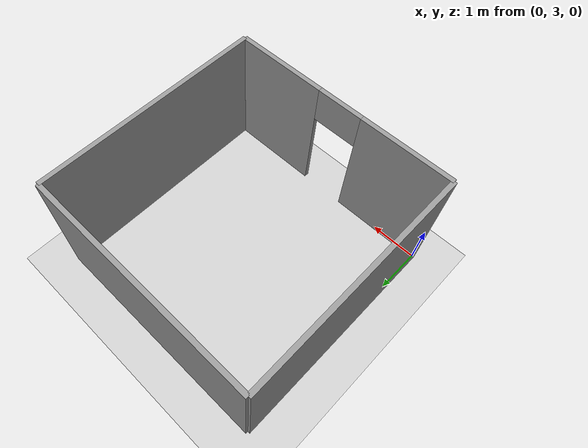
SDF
<sdf version="1.5">
 <world name="default">
  <model name="doorway_0">
   <static>1</static>
   <pose>2.0 3.0 0 0 0 0.0</pose>
   <link name="link">
    <pose>0.5 0 2.4 0 0 0</pose>
    <collision name="collision"><geometry><box><size>1.0 0.1 0.8</size></box></geometry></collision>
    <visual name="visual">
     <geometry><box><size>1.0 0.1 0.8</size></box></geometry>
     <material>
      <script>
       <uri>model://grey_wall/materials/scripts</uri>
       <uri>model://grey_wall/materials/textures</uri>
       <name>vrc/grey_wall</name>
      </script>
     </material>
    </visual>
   </link>
  </model>
  <include><uri>model://sun</uri></include>
  <include><uri>model://ground_plane</uri></include>
  <model name="wall_0">
   <static>1</static>
   <link name="link">
    <collision name="collision"><geometry><box><size>5.0 0.1 2.8</size></box></geometry></collision>
    <visual name="visual">
     <cast_shadows>0</cast_shadows>
     <geometry><box><size>5.0 0.1 2.8</size></box></geometry>
     <material>
      <script>
       <uri>model://grey_wall/materials/scripts</uri>
       <uri>model://grey_wall/materials/textures</uri>
       <name>vrc/grey_wall</name>
      </script>
     </material>
    </visual>
    <pose>2.5 0 1.4 0 0 0</pose>
   </link>
   <pose>5.0 3.0 0 0 0 1.5707963267948966</pose>
  </model>
  <model name="wall_1">
   <static>1</static>
   <link name="link">
    <collision name="collision"><geometry><box><size>5.0 0.1 2.8</size></box></geometry></collision>
    <visual name="visual">
     <cast_shadows>0</cast_shadows>
     <geometry><box><size>5.0 0.1 2.8</size></box></geometry>
     <material>
      <script>
       <uri>model://grey_wall/materials/scripts</uri>
       <uri>model://grey_wall/materials/textures</uri>
       <name>vrc/grey_wall</name>
      </script>
     </material>
    </visual>
    <pose>2.5 0 1.4 0 0 0</pose>
   </link>
   <pose>5.0 8.0 0 0 0 3.141592653589793</pose>
  </model>
  <model name="wall_2">
   <static>1</static>
   <link name="link">
    <collision name="collision"><geometry><box><size>5.0 0.1 2.8</size></box></geometry></collision>
    <visual name="visual">
     <cast_shadows>0</cast_shadows>
     <geometry><box><size>5.0 0.1 2.8</size></box></geometry>
     <material>
      <script>
       <uri>model://grey_wall/materials/scripts</uri>
       <uri>model://grey_wall/materials/textures</uri>
       <name>vrc/grey_wall</name>
      </script>
     </material>
    </visual>
    <pose>2.5 0 1.4 0 0 0</pose>
   </link>
   <pose>0.0 8.0 0 0 0 -1.5707963267948966</pose>
  </model>
  <model name="wall_3">
   <static>1</static>
   <link name="link">
    <collision name="collision"><geometry><box><size>2.0 0.1 2.8</size></box></geometry></collision>
    <visual name="visual">
     <cast_shadows>0</cast_shadows>
     <geometry><box><size>2.0 0.1 2.8</size></box></geometry>
     <material>
      <script>
       <uri>model://grey_wall/materials/scripts</uri>
       <uri>model://grey_wall/materials/textures</uri>
       <name>vrc/grey_wall</name>
      </script>
     </material>
    </visual>
    <pose>1.0 0 1.4 0 0 0</pose>
   </link>
   <pose>0.0 3.0 0 0 0 0.0</pose>
  </model>
  <model name="wall_4">
   <static>1</static>
   <link name="link">
    <collision name="collision"><geometry><box><size>2.0 0.1 2.8</size></box></geometry></collision>
    <visual name="visual">
     <cast_shadows>0</cast_shadows>
     <geometry><box><size>2.0 0.1 2.8</size></box></geometry>
     <material>
      <script>
       <uri>model://grey_wall/materials/scripts</uri>
       <uri>model://grey_wall/materials/textures</uri>
       <name>vrc/grey_wall</name>
      </script>
     </material>
    </visual>
    <pose>1.0 0 1.4 0 0 0</pose>
   </link>
   <pose>3.0 3.0 0 0 0 0.0</pose>
  </model>
 </world>
</sdf>
